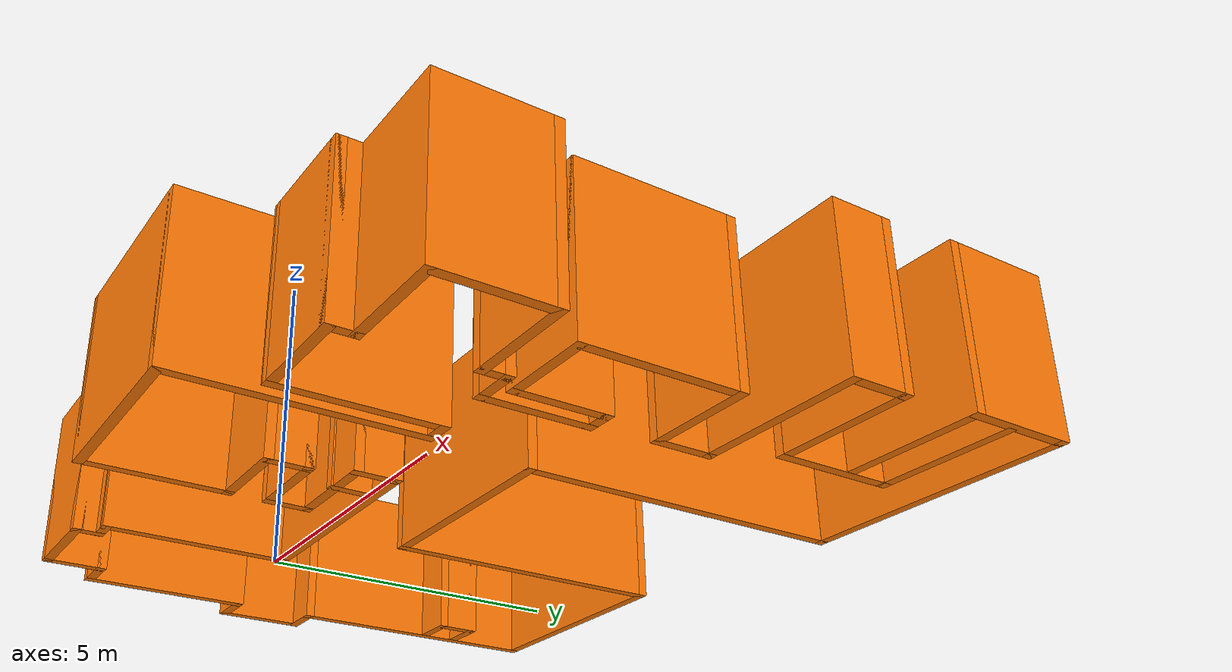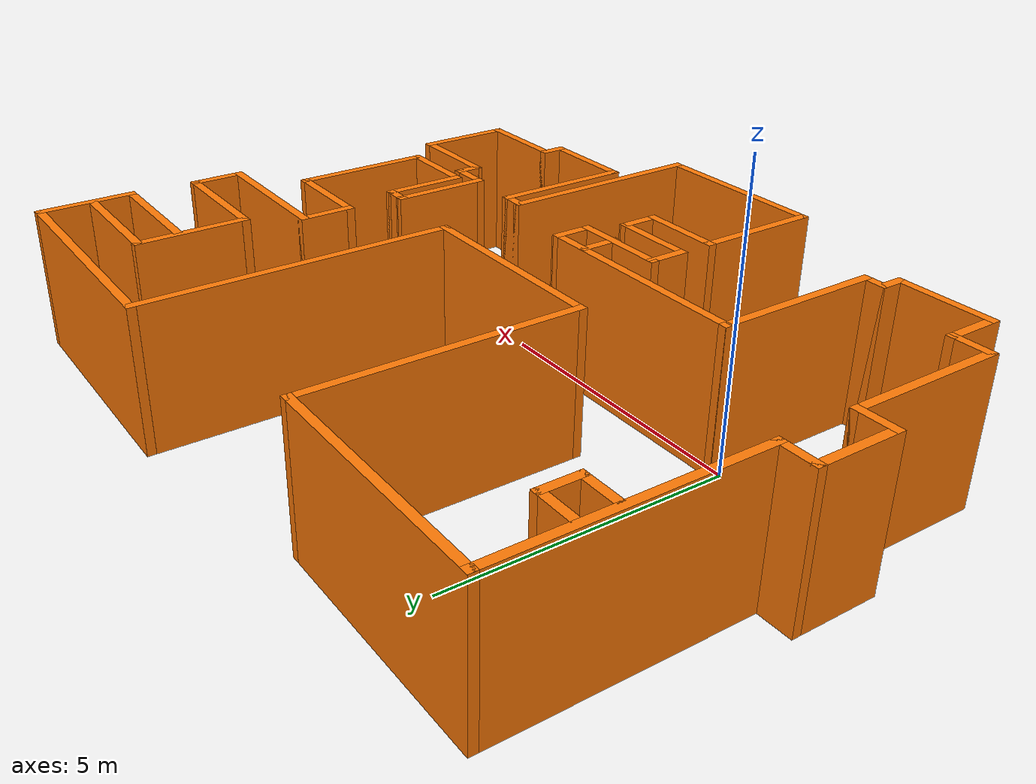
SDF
<?xml version='1.0'?>
<sdf version='1.6'>
  <model name='map_75'>
    <pose frame=''>3.26977 1.49824 0 0 -0 0</pose>
    <link name='Wall_10'>
      <collision name='Wall_10_Collision'>
        <geometry>
          <box>
            <size>1.5 0.15 2.5</size>
          </box>
        </geometry>
        <pose frame=''>0 0 1.25 0 -0 0</pose>
      </collision>
      <visual name='Wall_10_Visual'>
        <pose frame=''>0 0 1.25 0 -0 0</pose>
        <geometry>
          <box>
            <size>1.5 0.15 2.5</size>
          </box>
        </geometry>
        <material>
          <script>
            <uri>file://media/materials/scripts/gazebo.material</uri>
            <name>Gazebo/Grey</name>
          </script>
          <ambient>0.996078 0.47451 0.0196078 1</ambient>
        </material>
        <meta>
          <layer>0</layer>
        </meta>
      </visual>
      <pose frame=''>-6.325 -0.475 0 0 -0 -1.5708</pose>
    </link>
    <link name='Wall_11'>
      <collision name='Wall_11_Collision'>
        <geometry>
          <box>
            <size>0.75 0.15 2.5</size>
          </box>
        </geometry>
        <pose frame=''>0 0 1.25 0 -0 0</pose>
      </collision>
      <visual name='Wall_11_Visual'>
        <pose frame=''>0 0 1.25 0 -0 0</pose>
        <geometry>
          <box>
            <size>0.75 0.15 2.5</size>
          </box>
        </geometry>
        <material>
          <script>
            <uri>file://media/materials/scripts/gazebo.material</uri>
            <name>Gazebo/Grey</name>
          </script>
          <ambient>0.996078 0.47451 0.0196078 1</ambient>
        </material>
        <meta>
          <layer>0</layer>
        </meta>
      </visual>
      <pose frame=''>-6.025 -1.15 0 0 -0 0</pose>
    </link>
    <link name='Wall_12'>
      <collision name='Wall_12_Collision'>
        <geometry>
          <box>
            <size>2.75 0.15 2.5</size>
          </box>
        </geometry>
        <pose frame=''>0 0 1.25 0 -0 0</pose>
      </collision>
      <visual name='Wall_12_Visual'>
        <pose frame=''>0 0 1.25 0 -0 0</pose>
        <geometry>
          <box>
            <size>2.75 0.15 2.5</size>
          </box>
        </geometry>
        <material>
          <script>
            <uri>file://media/materials/scripts/gazebo.material</uri>
            <name>Gazebo/Grey</name>
          </script>
          <ambient>0.996078 0.47451 0.0196078 1</ambient>
        </material>
        <meta>
          <layer>0</layer>
        </meta>
      </visual>
      <pose frame=''>-5.725 -2.45 0 0 -0 -1.5708</pose>
    </link>
    <link name='Wall_13'>
      <collision name='Wall_13_Collision'>
        <geometry>
          <box>
            <size>0.75 0.15 2.5</size>
          </box>
        </geometry>
        <pose frame=''>0 0 1.25 0 -0 0</pose>
      </collision>
      <visual name='Wall_13_Visual'>
        <pose frame=''>0 0 1.25 0 -0 0</pose>
        <geometry>
          <box>
            <size>0.75 0.15 2.5</size>
          </box>
        </geometry>
        <material>
          <script>
            <uri>file://media/materials/scripts/gazebo.material</uri>
            <name>Gazebo/Grey</name>
          </script>
          <ambient>0.996078 0.47451 0.0196078 1</ambient>
        </material>
        <meta>
          <layer>0</layer>
        </meta>
      </visual>
      <pose frame=''>-5.425 -3.75 0 0 -0 0</pose>
    </link>
    <link name='Wall_14'>
      <collision name='Wall_14_Collision'>
        <geometry>
          <box>
            <size>1 0.15 2.5</size>
          </box>
        </geometry>
        <pose frame=''>0 0 1.25 0 -0 0</pose>
      </collision>
      <visual name='Wall_14_Visual'>
        <pose frame=''>0 0 1.25 0 -0 0</pose>
        <geometry>
          <box>
            <size>1 0.15 2.5</size>
          </box>
        </geometry>
        <material>
          <script>
            <uri>file://media/materials/scripts/gazebo.material</uri>
            <name>Gazebo/Grey</name>
          </script>
          <ambient>0.996078 0.47451 0.0196078 1</ambient>
        </material>
        <meta>
          <layer>0</layer>
        </meta>
      </visual>
      <pose frame=''>-5.125 -4.175 0 0 -0 -1.5708</pose>
    </link>
    <link name='Wall_15'>
      <collision name='Wall_15_Collision'>
        <geometry>
          <box>
            <size>1.75 0.15 2.5</size>
          </box>
        </geometry>
        <pose frame=''>0 0 1.25 0 -0 0</pose>
      </collision>
      <visual name='Wall_15_Visual'>
        <pose frame=''>0 0 1.25 0 -0 0</pose>
        <geometry>
          <box>
            <size>1.75 0.15 2.5</size>
          </box>
        </geometry>
        <material>
          <script>
            <uri>file://media/materials/scripts/gazebo.material</uri>
            <name>Gazebo/Grey</name>
          </script>
          <ambient>0.996078 0.47451 0.0196078 1</ambient>
        </material>
        <meta>
          <layer>0</layer>
        </meta>
      </visual>
      <pose frame=''>-4.325 -4.6 0 0 -0 0</pose>
    </link>
    <link name='Wall_16'>
      <collision name='Wall_16_Collision'>
        <geometry>
          <box>
            <size>0.5 0.15 2.5</size>
          </box>
        </geometry>
        <pose frame=''>0 0 1.25 0 -0 0</pose>
      </collision>
      <visual name='Wall_16_Visual'>
        <pose frame=''>0 0 1.25 0 -0 0</pose>
        <geometry>
          <box>
            <size>0.5 0.15 2.5</size>
          </box>
        </geometry>
        <material>
          <script>
            <uri>file://media/materials/scripts/gazebo.material</uri>
            <name>Gazebo/Grey</name>
          </script>
          <ambient>0.996078 0.47451 0.0196078 1</ambient>
        </material>
        <meta>
          <layer>0</layer>
        </meta>
      </visual>
      <pose frame=''>-3.525 -4.425 0 0 -0 1.5708</pose>
    </link>
    <link name='Wall_17'>
      <collision name='Wall_17_Collision'>
        <geometry>
          <box>
            <size>0.5 0.15 2.5</size>
          </box>
        </geometry>
        <pose frame=''>0 0 1.25 0 -0 0</pose>
      </collision>
      <visual name='Wall_17_Visual'>
        <pose frame=''>0 0 1.25 0 -0 0</pose>
        <geometry>
          <box>
            <size>0.5 0.15 2.5</size>
          </box>
        </geometry>
        <material>
          <script>
            <uri>file://media/materials/scripts/gazebo.material</uri>
            <name>Gazebo/Grey</name>
          </script>
          <ambient>0.996078 0.47451 0.0196078 1</ambient>
        </material>
        <meta>
          <layer>0</layer>
        </meta>
      </visual>
      <pose frame=''>-3.35 -4.25 0 0 -0 0</pose>
    </link>
    <link name='Wall_18'>
      <collision name='Wall_18_Collision'>
        <geometry>
          <box>
            <size>3 0.15 2.5</size>
          </box>
        </geometry>
        <pose frame=''>0 0 1.25 0 -0 0</pose>
      </collision>
      <visual name='Wall_18_Visual'>
        <pose frame=''>0 0 1.25 0 -0 0</pose>
        <geometry>
          <box>
            <size>3 0.15 2.5</size>
          </box>
        </geometry>
        <material>
          <script>
            <uri>file://media/materials/scripts/gazebo.material</uri>
            <name>Gazebo/Grey</name>
          </script>
          <ambient>0.996078 0.47451 0.0196078 1</ambient>
        </material>
        <meta>
          <layer>0</layer>
        </meta>
      </visual>
      <pose frame=''>-3.175 -2.825 0 0 -0 1.5708</pose>
    </link>
    <link name='Wall_19'>
      <collision name='Wall_19_Collision'>
        <geometry>
          <box>
            <size>4 0.15 2.5</size>
          </box>
        </geometry>
        <pose frame=''>0 0 1.25 0 -0 0</pose>
      </collision>
      <visual name='Wall_19_Visual'>
        <pose frame=''>0 0 1.25 0 -0 0</pose>
        <geometry>
          <box>
            <size>4 0.15 2.5</size>
          </box>
        </geometry>
        <material>
          <script>
            <uri>file://media/materials/scripts/gazebo.material</uri>
            <name>Gazebo/Grey</name>
          </script>
          <ambient>0.996078 0.47451 0.0196078 1</ambient>
        </material>
        <meta>
          <layer>0</layer>
        </meta>
      </visual>
      <pose frame=''>-1.25 -1.4 0 0 -0 0</pose>
    </link>
    <link name='Wall_2'>
      <collision name='Wall_2_Collision'>
        <geometry>
          <box>
            <size>4.5 0.15 2.5</size>
          </box>
        </geometry>
        <pose frame=''>0 0 1.25 0 -0 0</pose>
      </collision>
      <visual name='Wall_2_Visual'>
        <pose frame=''>0 0 1.25 0 -0 0</pose>
        <geometry>
          <box>
            <size>4.5 0.15 2.5</size>
          </box>
        </geometry>
        <material>
          <script>
            <uri>file://media/materials/scripts/gazebo.material</uri>
            <name>Gazebo/Grey</name>
          </script>
          <ambient>0.996078 0.47451 0.0196078 1</ambient>
        </material>
        <meta>
          <layer>0</layer>
        </meta>
      </visual>
      <pose frame=''>4.15 5.3 0 0 -0 3.14159</pose>
    </link>
    <link name='Wall_20'>
      <collision name='Wall_20_Collision'>
        <geometry>
          <box>
            <size>0.75 0.15 2.5</size>
          </box>
        </geometry>
        <pose frame=''>0 0 1.25 0 -0 0</pose>
      </collision>
      <visual name='Wall_20_Visual'>
        <pose frame=''>0 0 1.25 0 -0 0</pose>
        <geometry>
          <box>
            <size>0.75 0.15 2.5</size>
          </box>
        </geometry>
        <material>
          <script>
            <uri>file://media/materials/scripts/gazebo.material</uri>
            <name>Gazebo/Grey</name>
          </script>
          <ambient>0.996078 0.47451 0.0196078 1</ambient>
        </material>
        <meta>
          <layer>0</layer>
        </meta>
      </visual>
      <pose frame=''>0.675 -1.7 0 0 -0 -1.5708</pose>
    </link>
    <link name='Wall_22'>
      <collision name='Wall_22_Collision'>
        <geometry>
          <box>
            <size>0.75 0.15 2.5</size>
          </box>
        </geometry>
        <pose frame=''>0 0 1.25 0 -0 0</pose>
      </collision>
      <visual name='Wall_22_Visual'>
        <pose frame=''>0 0 1.25 0 -0 0</pose>
        <geometry>
          <box>
            <size>0.75 0.15 2.5</size>
          </box>
        </geometry>
        <material>
          <script>
            <uri>file://media/materials/scripts/gazebo.material</uri>
            <name>Gazebo/Grey</name>
          </script>
          <ambient>0.996078 0.47451 0.0196078 1</ambient>
        </material>
        <meta>
          <layer>0</layer>
        </meta>
      </visual>
      <pose frame=''>0.023413 -1.72985 0 0 -0 -1.5708</pose>
    </link>
    <link name='Wall_24'>
      <collision name='Wall_24_Collision'>
        <geometry>
          <box>
            <size>1.75 0.15 2.5</size>
          </box>
        </geometry>
        <pose frame=''>0 0 1.25 0 -0 0</pose>
      </collision>
      <visual name='Wall_24_Visual'>
        <pose frame=''>0 0 1.25 0 -0 0</pose>
        <geometry>
          <box>
            <size>1.75 0.15 2.5</size>
          </box>
        </geometry>
        <material>
          <script>
            <uri>file://media/materials/scripts/gazebo.material</uri>
            <name>Gazebo/Grey</name>
          </script>
          <ambient>0.996078 0.47451 0.0196078 1</ambient>
        </material>
        <meta>
          <layer>0</layer>
        </meta>
      </visual>
      <pose frame=''>-0.125 -2 0 0 -0 3.14159</pose>
    </link>
    <link name='Wall_25'>
      <collision name='Wall_25_Collision'>
        <geometry>
          <box>
            <size>0.75 0.15 2.5</size>
          </box>
        </geometry>
        <pose frame=''>0 0 1.25 0 -0 0</pose>
      </collision>
      <visual name='Wall_25_Visual'>
        <pose frame=''>0 0 1.25 0 -0 0</pose>
        <geometry>
          <box>
            <size>0.75 0.15 2.5</size>
          </box>
        </geometry>
        <material>
          <script>
            <uri>file://media/materials/scripts/gazebo.material</uri>
            <name>Gazebo/Grey</name>
          </script>
          <ambient>0.996078 0.47451 0.0196078 1</ambient>
        </material>
        <meta>
          <layer>0</layer>
        </meta>
      </visual>
      <pose frame=''>-0.925 -2.3 0 0 -0 -1.5708</pose>
    </link>
    <link name='Wall_26'>
      <collision name='Wall_26_Collision'>
        <geometry>
          <box>
            <size>1.5 0.15 2.5</size>
          </box>
        </geometry>
        <pose frame=''>0 0 1.25 0 -0 0</pose>
      </collision>
      <visual name='Wall_26_Visual'>
        <pose frame=''>0 0 1.25 0 -0 0</pose>
        <geometry>
          <box>
            <size>1.5 0.15 2.5</size>
          </box>
        </geometry>
        <material>
          <script>
            <uri>file://media/materials/scripts/gazebo.material</uri>
            <name>Gazebo/Grey</name>
          </script>
          <ambient>0.996078 0.47451 0.0196078 1</ambient>
        </material>
        <meta>
          <layer>0</layer>
        </meta>
      </visual>
      <pose frame=''>-0.25 -2.6 0 0 -0 0</pose>
    </link>
    <link name='Wall_27'>
      <collision name='Wall_27_Collision'>
        <geometry>
          <box>
            <size>0.75 0.15 2.5</size>
          </box>
        </geometry>
        <pose frame=''>0 0 1.25 0 -0 0</pose>
      </collision>
      <visual name='Wall_27_Visual'>
        <pose frame=''>0 0 1.25 0 -0 0</pose>
        <geometry>
          <box>
            <size>0.75 0.15 2.5</size>
          </box>
        </geometry>
        <material>
          <script>
            <uri>file://media/materials/scripts/gazebo.material</uri>
            <name>Gazebo/Grey</name>
          </script>
          <ambient>0.996078 0.47451 0.0196078 1</ambient>
        </material>
        <meta>
          <layer>0</layer>
        </meta>
      </visual>
      <pose frame=''>0.425 -2.9 0 0 -0 -1.5708</pose>
    </link>
    <link name='Wall_28'>
      <collision name='Wall_28_Collision'>
        <geometry>
          <box>
            <size>1.5 0.15 2.5</size>
          </box>
        </geometry>
        <pose frame=''>0 0 1.25 0 -0 0</pose>
      </collision>
      <visual name='Wall_28_Visual'>
        <pose frame=''>0 0 1.25 0 -0 0</pose>
        <geometry>
          <box>
            <size>1.5 0.15 2.5</size>
          </box>
        </geometry>
        <material>
          <script>
            <uri>file://media/materials/scripts/gazebo.material</uri>
            <name>Gazebo/Grey</name>
          </script>
          <ambient>0.996078 0.47451 0.0196078 1</ambient>
        </material>
        <meta>
          <layer>0</layer>
        </meta>
      </visual>
      <pose frame=''>-0.25 -3.2 0 0 -0 3.14159</pose>
    </link>
    <link name='Wall_29'>
      <collision name='Wall_29_Collision'>
        <geometry>
          <box>
            <size>2.25 0.15 2.5</size>
          </box>
        </geometry>
        <pose frame=''>0 0 1.25 0 -0 0</pose>
      </collision>
      <visual name='Wall_29_Visual'>
        <pose frame=''>0 0 1.25 0 -0 0</pose>
        <geometry>
          <box>
            <size>2.25 0.15 2.5</size>
          </box>
        </geometry>
        <material>
          <script>
            <uri>file://media/materials/scripts/gazebo.material</uri>
            <name>Gazebo/Grey</name>
          </script>
          <ambient>0.996078 0.47451 0.0196078 1</ambient>
        </material>
        <meta>
          <layer>0</layer>
        </meta>
      </visual>
      <pose frame=''>-0.925 -4.25 0 0 -0 -1.5708</pose>
    </link>
    <link name='Wall_3'>
      <collision name='Wall_3_Collision'>
        <geometry>
          <box>
            <size>5.5 0.15 2.5</size>
          </box>
        </geometry>
        <pose frame=''>0 0 1.25 0 -0 0</pose>
      </collision>
      <visual name='Wall_3_Visual'>
        <pose frame=''>0 0 1.25 0 -0 0</pose>
        <geometry>
          <box>
            <size>5.5 0.15 2.5</size>
          </box>
        </geometry>
        <material>
          <script>
            <uri>file://media/materials/scripts/gazebo.material</uri>
            <name>Gazebo/Grey</name>
          </script>
          <ambient>0.996078 0.47451 0.0196078 1</ambient>
        </material>
        <meta>
          <layer>0</layer>
        </meta>
      </visual>
      <pose frame=''>1.975 2.625 0 0 -0 -1.5708</pose>
    </link>
    <link name='Wall_32'>
      <collision name='Wall_32_Collision'>
        <geometry>
          <box>
            <size>0.5 0.15 2.5</size>
          </box>
        </geometry>
        <pose frame=''>0 0 1.25 0 -0 0</pose>
      </collision>
      <visual name='Wall_32_Visual'>
        <pose frame=''>0 0 1.25 0 -0 0</pose>
        <geometry>
          <box>
            <size>0.5 0.15 2.5</size>
          </box>
        </geometry>
        <material>
          <script>
            <uri>file://media/materials/scripts/gazebo.material</uri>
            <name>Gazebo/Grey</name>
          </script>
          <ambient>0.996078 0.47451 0.0196078 1</ambient>
        </material>
        <meta>
          <layer>0</layer>
        </meta>
      </visual>
      <pose frame=''>2.35 -1.7 0 0 -0 0</pose>
    </link>
    <link name='Wall_33'>
      <collision name='Wall_33_Collision'>
        <geometry>
          <box>
            <size>2.5 0.15 2.5</size>
          </box>
        </geometry>
        <pose frame=''>0 0 1.25 0 -0 0</pose>
      </collision>
      <visual name='Wall_33_Visual'>
        <pose frame=''>0 0 1.25 0 -0 0</pose>
        <geometry>
          <box>
            <size>2.5 0.15 2.5</size>
          </box>
        </geometry>
        <material>
          <script>
            <uri>file://media/materials/scripts/gazebo.material</uri>
            <name>Gazebo/Grey</name>
          </script>
          <ambient>0.996078 0.47451 0.0196078 1</ambient>
        </material>
        <meta>
          <layer>0</layer>
        </meta>
      </visual>
      <pose frame=''>2.525 -2.875 0 0 -0 -1.5708</pose>
    </link>
    <link name='Wall_34'>
      <collision name='Wall_34_Collision'>
        <geometry>
          <box>
            <size>1.75 0.15 2.5</size>
          </box>
        </geometry>
        <pose frame=''>0 0 1.25 0 -0 0</pose>
      </collision>
      <visual name='Wall_34_Visual'>
        <pose frame=''>0 0 1.25 0 -0 0</pose>
        <geometry>
          <box>
            <size>1.75 0.15 2.5</size>
          </box>
        </geometry>
        <material>
          <script>
            <uri>file://media/materials/scripts/gazebo.material</uri>
            <name>Gazebo/Grey</name>
          </script>
          <ambient>0.996078 0.47451 0.0196078 1</ambient>
        </material>
        <meta>
          <layer>0</layer>
        </meta>
      </visual>
      <pose frame=''>3.325 -4.05 0 0 -0 0</pose>
    </link>
    <link name='Wall_35'>
      <collision name='Wall_35_Collision'>
        <geometry>
          <box>
            <size>0.5 0.15 2.5</size>
          </box>
        </geometry>
        <pose frame=''>0 0 1.25 0 -0 0</pose>
      </collision>
      <visual name='Wall_35_Visual'>
        <pose frame=''>0 0 1.25 0 -0 0</pose>
        <geometry>
          <box>
            <size>0.5 0.15 2.5</size>
          </box>
        </geometry>
        <material>
          <script>
            <uri>file://media/materials/scripts/gazebo.material</uri>
            <name>Gazebo/Grey</name>
          </script>
          <ambient>0.996078 0.47451 0.0196078 1</ambient>
        </material>
        <meta>
          <layer>0</layer>
        </meta>
      </visual>
      <pose frame=''>4.125 -3.875 0 0 -0 1.5708</pose>
    </link>
    <link name='Wall_36'>
      <collision name='Wall_36_Collision'>
        <geometry>
          <box>
            <size>1.75 0.15 2.5</size>
          </box>
        </geometry>
        <pose frame=''>0 0 1.25 0 -0 0</pose>
      </collision>
      <visual name='Wall_36_Visual'>
        <pose frame=''>0 0 1.25 0 -0 0</pose>
        <geometry>
          <box>
            <size>1.75 0.15 2.5</size>
          </box>
        </geometry>
        <material>
          <script>
            <uri>file://media/materials/scripts/gazebo.material</uri>
            <name>Gazebo/Grey</name>
          </script>
          <ambient>0.996078 0.47451 0.0196078 1</ambient>
        </material>
        <meta>
          <layer>0</layer>
        </meta>
      </visual>
      <pose frame=''>4.925 -3.7 0 0 -0 0</pose>
    </link>
    <link name='Wall_37'>
      <collision name='Wall_37_Collision'>
        <geometry>
          <box>
            <size>1.75 0.15 2.5</size>
          </box>
        </geometry>
        <pose frame=''>0 0 1.25 0 -0 0</pose>
      </collision>
      <visual name='Wall_37_Visual'>
        <pose frame=''>0 0 1.25 0 -0 0</pose>
        <geometry>
          <box>
            <size>1.75 0.15 2.5</size>
          </box>
        </geometry>
        <material>
          <script>
            <uri>file://media/materials/scripts/gazebo.material</uri>
            <name>Gazebo/Grey</name>
          </script>
          <ambient>0.996078 0.47451 0.0196078 1</ambient>
        </material>
        <meta>
          <layer>0</layer>
        </meta>
      </visual>
      <pose frame=''>5.725 -2.9 0 0 -0 1.5708</pose>
    </link>
    <link name='Wall_38'>
      <collision name='Wall_38_Collision'>
        <geometry>
          <box>
            <size>1.75 0.15 2.5</size>
          </box>
        </geometry>
        <pose frame=''>0 0 1.25 0 -0 0</pose>
      </collision>
      <visual name='Wall_38_Visual'>
        <pose frame=''>0 0 1.25 0 -0 0</pose>
        <geometry>
          <box>
            <size>1.75 0.15 2.5</size>
          </box>
        </geometry>
        <material>
          <script>
            <uri>file://media/materials/scripts/gazebo.material</uri>
            <name>Gazebo/Grey</name>
          </script>
          <ambient>0.996078 0.47451 0.0196078 1</ambient>
        </material>
        <meta>
          <layer>0</layer>
        </meta>
      </visual>
      <pose frame=''>4.925 -2.1 0 0 -0 3.14159</pose>
    </link>
    <link name='Wall_39'>
      <collision name='Wall_39_Collision'>
        <geometry>
          <box>
            <size>0.5 0.15 2.5</size>
          </box>
        </geometry>
        <pose frame=''>0 0 1.25 0 -0 0</pose>
      </collision>
      <visual name='Wall_39_Visual'>
        <pose frame=''>0 0 1.25 0 -0 0</pose>
        <geometry>
          <box>
            <size>0.5 0.15 2.5</size>
          </box>
        </geometry>
        <material>
          <script>
            <uri>file://media/materials/scripts/gazebo.material</uri>
            <name>Gazebo/Grey</name>
          </script>
          <ambient>0.996078 0.47451 0.0196078 1</ambient>
        </material>
        <meta>
          <layer>0</layer>
        </meta>
      </visual>
      <pose frame=''>4.125 -1.925 0 0 -0 1.5708</pose>
    </link>
    <link name='Wall_4'>
      <collision name='Wall_4_Collision'>
        <geometry>
          <box>
            <size>3.75 0.15 2.5</size>
          </box>
        </geometry>
        <pose frame=''>0 0 1.25 0 -0 0</pose>
      </collision>
      <visual name='Wall_4_Visual'>
        <pose frame=''>0 0 1.25 0 -0 0</pose>
        <geometry>
          <box>
            <size>3.75 0.15 2.5</size>
          </box>
        </geometry>
        <material>
          <script>
            <uri>file://media/materials/scripts/gazebo.material</uri>
            <name>Gazebo/Grey</name>
          </script>
          <ambient>0.996078 0.47451 0.0196078 1</ambient>
        </material>
        <meta>
          <layer>0</layer>
        </meta>
      </visual>
      <pose frame=''>0.175 -0.05 0 0 -0 3.14159</pose>
    </link>
    <link name='Wall_40'>
      <collision name='Wall_40_Collision'>
        <geometry>
          <box>
            <size>0.75 0.15 2.5</size>
          </box>
        </geometry>
        <pose frame=''>0 0 1.25 0 -0 0</pose>
      </collision>
      <visual name='Wall_40_Visual'>
        <pose frame=''>0 0 1.25 0 -0 0</pose>
        <geometry>
          <box>
            <size>0.75 0.15 2.5</size>
          </box>
        </geometry>
        <material>
          <script>
            <uri>file://media/materials/scripts/gazebo.material</uri>
            <name>Gazebo/Grey</name>
          </script>
          <ambient>0.996078 0.47451 0.0196078 1</ambient>
        </material>
        <meta>
          <layer>0</layer>
        </meta>
      </visual>
      <pose frame=''>3.825 -1.75 0 0 -0 3.14159</pose>
    </link>
    <link name='Wall_41'>
      <collision name='Wall_41_Collision'>
        <geometry>
          <box>
            <size>1.75 0.15 2.5</size>
          </box>
        </geometry>
        <pose frame=''>0 0 1.25 0 -0 0</pose>
      </collision>
      <visual name='Wall_41_Visual'>
        <pose frame=''>0 0 1.25 0 -0 0</pose>
        <geometry>
          <box>
            <size>1.75 0.15 2.5</size>
          </box>
        </geometry>
        <material>
          <script>
            <uri>file://media/materials/scripts/gazebo.material</uri>
            <name>Gazebo/Grey</name>
          </script>
          <ambient>0.996078 0.47451 0.0196078 1</ambient>
        </material>
        <meta>
          <layer>0</layer>
        </meta>
      </visual>
      <pose frame=''>3.525 -0.95 0 0 -0 1.5708</pose>
    </link>
    <link name='Wall_44'>
      <collision name='Wall_44_Collision'>
        <geometry>
          <box>
            <size>0.5 0.15 2.5</size>
          </box>
        </geometry>
        <pose frame=''>0 0 1.25 0 -0 0</pose>
      </collision>
      <visual name='Wall_44_Visual'>
        <pose frame=''>0 0 1.25 0 -0 0</pose>
        <geometry>
          <box>
            <size>0.5 0.15 2.5</size>
          </box>
        </geometry>
        <material>
          <script>
            <uri>file://media/materials/scripts/gazebo.material</uri>
            <name>Gazebo/Grey</name>
          </script>
          <ambient>0.996078 0.47451 0.0196078 1</ambient>
        </material>
        <meta>
          <layer>0</layer>
        </meta>
      </visual>
      <pose frame=''>3.7 -0.15 0 0 -0 0</pose>
    </link>
    <link name='Wall_45'>
      <collision name='Wall_45_Collision'>
        <geometry>
          <box>
            <size>1.5 0.15 2.5</size>
          </box>
        </geometry>
        <pose frame=''>0 0 1.25 0 -0 0</pose>
      </collision>
      <visual name='Wall_45_Visual'>
        <pose frame=''>0 0 1.25 0 -0 0</pose>
        <geometry>
          <box>
            <size>1.5 0.15 2.5</size>
          </box>
        </geometry>
        <material>
          <script>
            <uri>file://media/materials/scripts/gazebo.material</uri>
            <name>Gazebo/Grey</name>
          </script>
          <ambient>0.996078 0.47451 0.0196078 1</ambient>
        </material>
        <meta>
          <layer>0</layer>
        </meta>
      </visual>
      <pose frame=''>3.875 -0.825 0 0 -0 -1.5708</pose>
    </link>
    <link name='Wall_46'>
      <collision name='Wall_46_Collision'>
        <geometry>
          <box>
            <size>1.5 0.15 2.5</size>
          </box>
        </geometry>
        <pose frame=''>0 0 1.25 0 -0 0</pose>
      </collision>
      <visual name='Wall_46_Visual'>
        <pose frame=''>0 0 1.25 0 -0 0</pose>
        <geometry>
          <box>
            <size>1.5 0.15 2.5</size>
          </box>
        </geometry>
        <material>
          <script>
            <uri>file://media/materials/scripts/gazebo.material</uri>
            <name>Gazebo/Grey</name>
          </script>
          <ambient>0.996078 0.47451 0.0196078 1</ambient>
        </material>
        <meta>
          <layer>0</layer>
        </meta>
      </visual>
      <pose frame=''>4.55 -1.5 0 0 -0 0</pose>
    </link>
    <link name='Wall_47'>
      <collision name='Wall_47_Collision'>
        <geometry>
          <box>
            <size>2.5 0.15 2.5</size>
          </box>
        </geometry>
        <pose frame=''>0 0 1.25 0 -0 0</pose>
      </collision>
      <visual name='Wall_47_Visual'>
        <pose frame=''>0 0 1.25 0 -0 0</pose>
        <geometry>
          <box>
            <size>2.5 0.15 2.5</size>
          </box>
        </geometry>
        <material>
          <script>
            <uri>file://media/materials/scripts/gazebo.material</uri>
            <name>Gazebo/Grey</name>
          </script>
          <ambient>0.996078 0.47451 0.0196078 1</ambient>
        </material>
        <meta>
          <layer>0</layer>
        </meta>
      </visual>
      <pose frame=''>5.225 -0.325 0 0 -0 1.5708</pose>
    </link>
    <link name='Wall_48'>
      <collision name='Wall_48_Collision'>
        <geometry>
          <box>
            <size>1.75 0.15 2.5</size>
          </box>
        </geometry>
        <pose frame=''>0 0 1.25 0 -0 0</pose>
      </collision>
      <visual name='Wall_48_Visual'>
        <pose frame=''>0 0 1.25 0 -0 0</pose>
        <geometry>
          <box>
            <size>1.75 0.15 2.5</size>
          </box>
        </geometry>
        <material>
          <script>
            <uri>file://media/materials/scripts/gazebo.material</uri>
            <name>Gazebo/Grey</name>
          </script>
          <ambient>0.996078 0.47451 0.0196078 1</ambient>
        </material>
        <meta>
          <layer>0</layer>
        </meta>
      </visual>
      <pose frame=''>4.425 0.85 0 0 -0 3.14159</pose>
    </link>
    <link name='Wall_49'>
      <collision name='Wall_49_Collision'>
        <geometry>
          <box>
            <size>1 0.15 2.5</size>
          </box>
        </geometry>
        <pose frame=''>0 0 1.25 0 -0 0</pose>
      </collision>
      <visual name='Wall_49_Visual'>
        <pose frame=''>0 0 1.25 0 -0 0</pose>
        <geometry>
          <box>
            <size>1 0.15 2.5</size>
          </box>
        </geometry>
        <material>
          <script>
            <uri>file://media/materials/scripts/gazebo.material</uri>
            <name>Gazebo/Grey</name>
          </script>
          <ambient>0.996078 0.47451 0.0196078 1</ambient>
        </material>
        <meta>
          <layer>0</layer>
        </meta>
      </visual>
      <pose frame=''>3.625 1.275 0 0 -0 1.5708</pose>
    </link>
    <link name='Wall_50'>
      <collision name='Wall_50_Collision'>
        <geometry>
          <box>
            <size>2.75 0.15 2.5</size>
          </box>
        </geometry>
        <pose frame=''>0 0 1.25 0 -0 0</pose>
      </collision>
      <visual name='Wall_50_Visual'>
        <pose frame=''>0 0 1.25 0 -0 0</pose>
        <geometry>
          <box>
            <size>2.75 0.15 2.5</size>
          </box>
        </geometry>
        <material>
          <script>
            <uri>file://media/materials/scripts/gazebo.material</uri>
            <name>Gazebo/Grey</name>
          </script>
          <ambient>0.996078 0.47451 0.0196078 1</ambient>
        </material>
        <meta>
          <layer>0</layer>
        </meta>
      </visual>
      <pose frame=''>4.925 1.7 0 0 -0 0</pose>
    </link>
    <link name='Wall_51'>
      <collision name='Wall_51_Collision'>
        <geometry>
          <box>
            <size>1 0.15 2.5</size>
          </box>
        </geometry>
        <pose frame=''>0 0 1.25 0 -0 0</pose>
      </collision>
      <visual name='Wall_51_Visual'>
        <pose frame=''>0 0 1.25 0 -0 0</pose>
        <geometry>
          <box>
            <size>1 0.15 2.5</size>
          </box>
        </geometry>
        <material>
          <script>
            <uri>file://media/materials/scripts/gazebo.material</uri>
            <name>Gazebo/Grey</name>
          </script>
          <ambient>0.996078 0.47451 0.0196078 1</ambient>
        </material>
        <meta>
          <layer>0</layer>
        </meta>
      </visual>
      <pose frame=''>6.225 2.125 0 0 -0 1.5708</pose>
    </link>
    <link name='Wall_52'>
      <collision name='Wall_52_Collision'>
        <geometry>
          <box>
            <size>2.25 0.15 2.5</size>
          </box>
        </geometry>
        <pose frame=''>0 0 1.25 0 -0 0</pose>
      </collision>
      <visual name='Wall_52_Visual'>
        <pose frame=''>0 0 1.25 0 -0 0</pose>
        <geometry>
          <box>
            <size>2.25 0.15 2.5</size>
          </box>
        </geometry>
        <material>
          <script>
            <uri>file://media/materials/scripts/gazebo.material</uri>
            <name>Gazebo/Grey</name>
          </script>
          <ambient>0.996078 0.47451 0.0196078 1</ambient>
        </material>
        <meta>
          <layer>0</layer>
        </meta>
      </visual>
      <pose frame=''>5.175 2.55 0 0 -0 3.14159</pose>
    </link>
    <link name='Wall_53'>
      <collision name='Wall_53_Collision'>
        <geometry>
          <box>
            <size>2 0.15 2.5</size>
          </box>
        </geometry>
        <pose frame=''>0 0 1.25 0 -0 0</pose>
      </collision>
      <visual name='Wall_53_Visual'>
        <pose frame=''>0 0 1.25 0 -0 0</pose>
        <geometry>
          <box>
            <size>2 0.15 2.5</size>
          </box>
        </geometry>
        <material>
          <script>
            <uri>file://media/materials/scripts/gazebo.material</uri>
            <name>Gazebo/Grey</name>
          </script>
          <ambient>0.996078 0.47451 0.0196078 1</ambient>
        </material>
        <meta>
          <layer>0</layer>
        </meta>
      </visual>
      <pose frame=''>4.125 3.475 0 0 -0 1.5708</pose>
    </link>
    <link name='Wall_54'>
      <collision name='Wall_54_Collision'>
        <geometry>
          <box>
            <size>2.25 0.15 2.5</size>
          </box>
        </geometry>
        <pose frame=''>0 0 1.25 0 -0 0</pose>
      </collision>
      <visual name='Wall_54_Visual'>
        <pose frame=''>0 0 1.25 0 -0 0</pose>
        <geometry>
          <box>
            <size>2.25 0.15 2.5</size>
          </box>
        </geometry>
        <material>
          <script>
            <uri>file://media/materials/scripts/gazebo.material</uri>
            <name>Gazebo/Grey</name>
          </script>
          <ambient>0.996078 0.47451 0.0196078 1</ambient>
        </material>
        <meta>
          <layer>0</layer>
        </meta>
      </visual>
      <pose frame=''>5.175 4.4 0 0 -0 0</pose>
    </link>
    <link name='Wall_56'>
      <collision name='Wall_56_Collision'>
        <geometry>
          <box>
            <size>1.75 0.15 2.5</size>
          </box>
        </geometry>
        <pose frame=''>0 0 1.25 0 -0 0</pose>
      </collision>
      <visual name='Wall_56_Visual'>
        <pose frame=''>0 0 1.25 0 -0 0</pose>
        <geometry>
          <box>
            <size>1.75 0.15 2.5</size>
          </box>
        </geometry>
        <material>
          <script>
            <uri>file://media/materials/scripts/gazebo.material</uri>
            <name>Gazebo/Grey</name>
          </script>
          <ambient>0.996078 0.47451 0.0196078 1</ambient>
        </material>
        <meta>
          <layer>0</layer>
        </meta>
      </visual>
      <pose frame=''>6.325 4.5 0 0 -0 -1.5708</pose>
    </link>
    <link name='Wall_57'>
      <collision name='Wall_57_Collision'>
        <geometry>
          <box>
            <size>2.25 0.15 2.5</size>
          </box>
        </geometry>
        <pose frame=''>0 0 1.25 0 -0 0</pose>
      </collision>
      <visual name='Wall_57_Visual'>
        <pose frame=''>0 0 1.25 0 -0 0</pose>
        <geometry>
          <box>
            <size>2.25 0.15 2.5</size>
          </box>
        </geometry>
        <material>
          <script>
            <uri>file://media/materials/scripts/gazebo.material</uri>
            <name>Gazebo/Grey</name>
          </script>
          <ambient>0.996078 0.47451 0.0196078 1</ambient>
        </material>
        <meta>
          <layer>0</layer>
        </meta>
      </visual>
      <pose frame=''>5.275 3.7 0 0 -0 3.14159</pose>
    </link>
    <link name='Wall_6'>
      <collision name='Wall_6_Collision'>
        <geometry>
          <box>
            <size>4.75 0.15 2.5</size>
          </box>
        </geometry>
        <pose frame=''>0 0 1.25 0 -0 0</pose>
      </collision>
      <visual name='Wall_6_Visual'>
        <pose frame=''>0 0 1.25 0 -0 0</pose>
        <geometry>
          <box>
            <size>4.75 0.15 2.5</size>
          </box>
        </geometry>
        <material>
          <script>
            <uri>file://media/materials/scripts/gazebo.material</uri>
            <name>Gazebo/Grey</name>
          </script>
          <ambient>0.996078 0.47451 0.0196078 1</ambient>
        </material>
        <meta>
          <layer>0</layer>
        </meta>
      </visual>
      <pose frame=''>-1.625 2.25 0 0 -0 1.5708</pose>
    </link>
    <link name='Wall_64'>
      <collision name='Wall_64_Collision'>
        <geometry>
          <box>
            <size>3.25 0.15 2.5</size>
          </box>
        </geometry>
        <pose frame=''>0 0 1.25 0 -0 0</pose>
      </collision>
      <visual name='Wall_64_Visual'>
        <pose frame=''>0 0 1.25 0 -0 0</pose>
        <geometry>
          <box>
            <size>3.25 0.15 2.5</size>
          </box>
        </geometry>
        <material>
          <script>
            <uri>file://media/materials/scripts/gazebo.material</uri>
            <name>Gazebo/Grey</name>
          </script>
          <ambient>0.996078 0.47451 0.0196078 1</ambient>
        </material>
        <meta>
          <layer>0</layer>
        </meta>
      </visual>
      <pose frame=''>0.625 -5.3 0 0 -0 0</pose>
    </link>
    <link name='Wall_65'>
      <collision name='Wall_65_Collision'>
        <geometry>
          <box>
            <size>3.75 0.15 2.5</size>
          </box>
        </geometry>
        <pose frame=''>0 0 1.25 0 -0 0</pose>
      </collision>
      <visual name='Wall_65_Visual'>
        <pose frame=''>0 0 1.25 0 -0 0</pose>
        <geometry>
          <box>
            <size>3.75 0.15 2.5</size>
          </box>
        </geometry>
        <material>
          <script>
            <uri>file://media/materials/scripts/gazebo.material</uri>
            <name>Gazebo/Grey</name>
          </script>
          <ambient>0.996078 0.47451 0.0196078 1</ambient>
        </material>
        <meta>
          <layer>0</layer>
        </meta>
      </visual>
      <pose frame=''>2.175 -3.5 0 0 -0 1.5708</pose>
    </link>
    <link name='Wall_67'>
      <collision name='Wall_67_Collision'>
        <geometry>
          <box>
            <size>0.75 0.15 2.5</size>
          </box>
        </geometry>
        <pose frame=''>0 0 1.25 0 -0 0</pose>
      </collision>
      <visual name='Wall_67_Visual'>
        <pose frame=''>0 0 1.25 0 -0 0</pose>
        <geometry>
          <box>
            <size>0.75 0.15 2.5</size>
          </box>
        </geometry>
        <material>
          <script>
            <uri>file://media/materials/scripts/gazebo.material</uri>
            <name>Gazebo/Grey</name>
          </script>
          <ambient>0.996078 0.47451 0.0196078 1</ambient>
        </material>
        <meta>
          <layer>0</layer>
        </meta>
      </visual>
      <pose frame=''>-5.30519 3.15868 0 0 -0 0</pose>
    </link>
    <link name='Wall_68'>
      <collision name='Wall_68_Collision'>
        <geometry>
          <box>
            <size>0.75 0.15 2.5</size>
          </box>
        </geometry>
        <pose frame=''>0 0 1.25 0 -0 0</pose>
      </collision>
      <visual name='Wall_68_Visual'>
        <pose frame=''>0 0 1.25 0 -0 0</pose>
        <geometry>
          <box>
            <size>0.75 0.15 2.5</size>
          </box>
        </geometry>
        <material>
          <script>
            <uri>file://media/materials/scripts/gazebo.material</uri>
            <name>Gazebo/Grey</name>
          </script>
          <ambient>0.996078 0.47451 0.0196078 1</ambient>
        </material>
        <meta>
          <layer>0</layer>
        </meta>
      </visual>
      <pose frame=''>-5.00519 2.85868 0 0 -0 -1.5708</pose>
    </link>
    <link name='Wall_69'>
      <collision name='Wall_69_Collision'>
        <geometry>
          <box>
            <size>0.75 0.15 2.5</size>
          </box>
        </geometry>
        <pose frame=''>0 0 1.25 0 -0 0</pose>
      </collision>
      <visual name='Wall_69_Visual'>
        <pose frame=''>0 0 1.25 0 -0 0</pose>
        <geometry>
          <box>
            <size>0.75 0.15 2.5</size>
          </box>
        </geometry>
        <material>
          <script>
            <uri>file://media/materials/scripts/gazebo.material</uri>
            <name>Gazebo/Grey</name>
          </script>
          <ambient>0.996078 0.47451 0.0196078 1</ambient>
        </material>
        <meta>
          <layer>0</layer>
        </meta>
      </visual>
      <pose frame=''>-5.30519 2.55868 0 0 -0 3.14159</pose>
    </link>
    <link name='Wall_7'>
      <collision name='Wall_7_Collision'>
        <geometry>
          <box>
            <size>4.25 0.15 2.5</size>
          </box>
        </geometry>
        <pose frame=''>0 0 1.25 0 -0 0</pose>
      </collision>
      <visual name='Wall_7_Visual'>
        <pose frame=''>0 0 1.25 0 -0 0</pose>
        <geometry>
          <box>
            <size>4.25 0.15 2.5</size>
          </box>
        </geometry>
        <material>
          <script>
            <uri>file://media/materials/scripts/gazebo.material</uri>
            <name>Gazebo/Grey</name>
          </script>
          <ambient>0.996078 0.47451 0.0196078 1</ambient>
        </material>
        <meta>
          <layer>0</layer>
        </meta>
      </visual>
      <pose frame=''>-3.675 4.55 0 0 -0 3.14159</pose>
    </link>
    <link name='Wall_8'>
      <collision name='Wall_8_Collision'>
        <geometry>
          <box>
            <size>4.5 0.15 2.5</size>
          </box>
        </geometry>
        <pose frame=''>0 0 1.25 0 -0 0</pose>
      </collision>
      <visual name='Wall_8_Visual'>
        <pose frame=''>0 0 1.25 0 -0 0</pose>
        <geometry>
          <box>
            <size>4.5 0.15 2.5</size>
          </box>
        </geometry>
        <material>
          <script>
            <uri>file://media/materials/scripts/gazebo.material</uri>
            <name>Gazebo/Grey</name>
          </script>
          <ambient>0.996078 0.47451 0.0196078 1</ambient>
        </material>
        <meta>
          <layer>0</layer>
        </meta>
      </visual>
      <pose frame=''>-5.725 2.375 0 0 -0 -1.5708</pose>
    </link>
    <link name='Wall_9'>
      <collision name='Wall_9_Collision'>
        <geometry>
          <box>
            <size>0.75 0.15 2.5</size>
          </box>
        </geometry>
        <pose frame=''>0 0 1.25 0 -0 0</pose>
      </collision>
      <visual name='Wall_9_Visual'>
        <pose frame=''>0 0 1.25 0 -0 0</pose>
        <geometry>
          <box>
            <size>0.75 0.15 2.5</size>
          </box>
        </geometry>
        <material>
          <script>
            <uri>file://media/materials/scripts/gazebo.material</uri>
            <name>Gazebo/Grey</name>
          </script>
          <ambient>0.996078 0.47451 0.0196078 1</ambient>
        </material>
        <meta>
          <layer>0</layer>
        </meta>
      </visual>
      <pose frame=''>-6.025 0.2 0 0 -0 3.14159</pose>
    </link>
    <static>1</static>
  </model>
</sdf>
